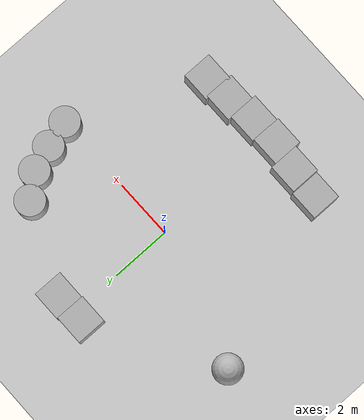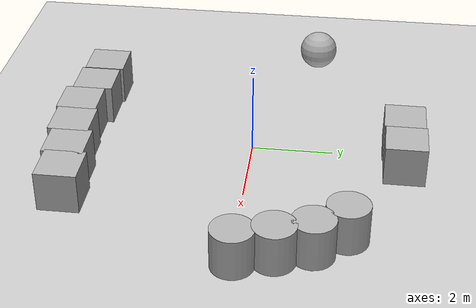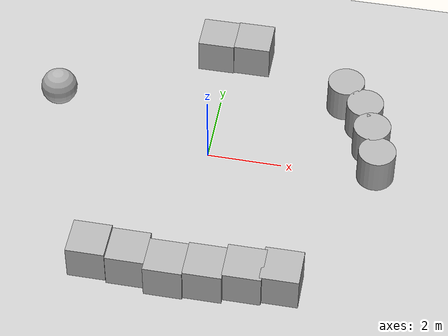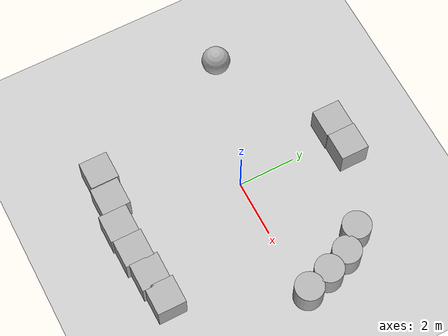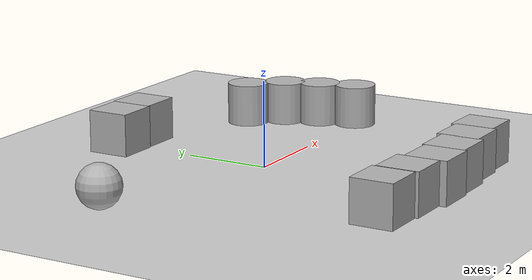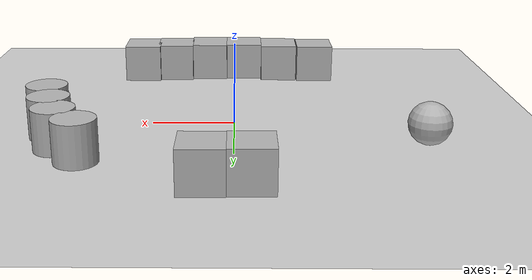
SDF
<sdf version='1.10'>
  <world name='empty'>
    <physics name='1ms' type='ignored'>
      <max_step_size>0.001</max_step_size>
      <real_time_factor>1</real_time_factor>
      <real_time_update_rate>1000</real_time_update_rate>
    </physics>
    <plugin name='gz::sim::systems::Physics' filename='gz-sim-physics-system'/>
    <plugin name='gz::sim::systems::UserCommands' filename='gz-sim-user-commands-system'/>
    <plugin name='gz::sim::systems::SceneBroadcaster' filename='gz-sim-scene-broadcaster-system'/>
    <plugin name='gz::sim::systems::Contact' filename='gz-sim-contact-system'/>
    <plugin filename="gz-sim-imu-system" name="gz::sim::systems::Imu"/>
    <gravity>0 0 -9.8000000000000007</gravity>
    <magnetic_field>5.5644999999999998e-06 2.2875799999999999e-05 -4.2388400000000002e-05</magnetic_field>
    <atmosphere type='adiabatic'/>
    <scene>
      <ambient>0.400000006 0.400000006 0.400000006 1</ambient>
      <background>0.699999988 0.699999988 0.699999988 1</background>
      <shadows>true</shadows>
    </scene>
    <model name='ground_plane'>
      <static>true</static>
      <link name='link'>
        <collision name='collision'>
          <geometry>
            <plane>
              <normal>0 0 1</normal>
              <size>100 100</size>
            </plane>
          </geometry>
          <surface>
            <friction>
              <ode/>
            </friction>
            <bounce/>
            <contact/>
          </surface>
        </collision>
        <visual name='visual'>
          <geometry>
            <plane>
              <normal>0 0 1</normal>
              <size>100 100</size>
            </plane>
          </geometry>
          <material>
            <ambient>0.800000012 0.800000012 0.800000012 1</ambient>
            <diffuse>0.800000012 0.800000012 0.800000012 1</diffuse>
            <specular>0.800000012 0.800000012 0.800000012 1</specular>
          </material>
        </visual>
        <pose>0 0 0 0 0 0</pose>
        <inertial>
          <pose>0 0 0 0 0 0</pose>
          <mass>1</mass>
          <inertia>
            <ixx>1</ixx>
            <ixy>0</ixy>
            <ixz>0</ixz>
            <iyy>1</iyy>
            <iyz>0</iyz>
            <izz>1</izz>
          </inertia>
        </inertial>
        <enable_wind>false</enable_wind>
      </link>
      <pose>0 0 0 0 0 0</pose>
      <self_collide>false</self_collide>
    </model>
    <model name='cylinder'>
      <pose>4.5254944354205895 0.082557884696148637 0.50000022095567642 4.9238945716377225e-07 1.9154482970250189e-07 -0.00046126272734830901</pose>
      <link name='cylinder_link'>
        <inertial>
          <inertia>
            <ixx>0.14580000000000001</ixx>
            <ixy>0</ixy>
            <ixz>0</ixz>
            <iyy>0.14580000000000001</iyy>
            <iyz>0</iyz>
            <izz>0.125</izz>
          </inertia>
          <mass>1</mass>
          <pose>0 0 0 0 0 0</pose>
        </inertial>
        <collision name='cylinder_collision'>
          <geometry>
            <cylinder>
              <radius>0.5</radius>
              <length>1</length>
            </cylinder>
          </geometry>
          <surface>
            <friction>
              <ode/>
            </friction>
            <bounce/>
            <contact/>
          </surface>
        </collision>
        <visual name='cylinder_visual'>
          <geometry>
            <cylinder>
              <radius>0.5</radius>
              <length>1</length>
            </cylinder>
          </geometry>
          <material>
            <ambient>0.300000012 0.300000012 0.300000012 1</ambient>
            <diffuse>0.699999988 0.699999988 0.699999988 1</diffuse>
            <specular>1 1 1 1</specular>
          </material>
        </visual>
        <pose>0 0 0 0 0 0</pose>
        <enable_wind>false</enable_wind>
      </link>
      <static>false</static>
      <self_collide>false</self_collide>
    </model>
    <model name='cylinder_0'>
      <pose>4.2877141300290083 0.9494468562381293 0.50000065344982347 -1.2901403114245178e-06 -5.1207281290646585e-07 -0.00036580791562883355</pose>
      <link name='cylinder_link'>
        <inertial>
          <inertia>
            <ixx>0.14580000000000001</ixx>
            <ixy>0</ixy>
            <ixz>0</ixz>
            <iyy>0.14580000000000001</iyy>
            <iyz>0</iyz>
            <izz>0.125</izz>
          </inertia>
          <mass>1</mass>
          <pose>0 0 0 0 0 0</pose>
        </inertial>
        <collision name='cylinder_collision'>
          <geometry>
            <cylinder>
              <radius>0.5</radius>
              <length>1</length>
            </cylinder>
          </geometry>
          <surface>
            <friction>
              <ode/>
            </friction>
            <bounce/>
            <contact/>
          </surface>
        </collision>
        <visual name='cylinder_visual'>
          <geometry>
            <cylinder>
              <radius>0.5</radius>
              <length>1</length>
            </cylinder>
          </geometry>
          <material>
            <ambient>0.300000012 0.300000012 0.300000012 1</ambient>
            <diffuse>0.699999988 0.699999988 0.699999988 1</diffuse>
            <specular>1 1 1 1</specular>
          </material>
        </visual>
        <pose>0 0 0 0 0 0</pose>
        <enable_wind>false</enable_wind>
      </link>
      <static>false</static>
      <self_collide>false</self_collide>
    </model>
    <model name='cylinder_1'>
      <pose>3.9989819976086576 1.7683630806000854 0.49999882458489819 -3.42447976061655e-06 2.2762849081620865e-06 0.00053944272605636369</pose>
      <link name='cylinder_link'>
        <inertial>
          <inertia>
            <ixx>0.14580000000000001</ixx>
            <ixy>0</ixy>
            <ixz>0</ixz>
            <iyy>0.14580000000000001</iyy>
            <iyz>0</iyz>
            <izz>0.125</izz>
          </inertia>
          <mass>1</mass>
          <pose>0 0 0 0 0 0</pose>
        </inertial>
        <collision name='cylinder_collision'>
          <geometry>
            <cylinder>
              <radius>0.5</radius>
              <length>1</length>
            </cylinder>
          </geometry>
          <surface>
            <friction>
              <ode/>
            </friction>
            <bounce/>
            <contact/>
          </surface>
        </collision>
        <visual name='cylinder_visual'>
          <geometry>
            <cylinder>
              <radius>0.5</radius>
              <length>1</length>
            </cylinder>
          </geometry>
          <material>
            <ambient>0.300000012 0.300000012 0.300000012 1</ambient>
            <diffuse>0.699999988 0.699999988 0.699999988 1</diffuse>
            <specular>1 1 1 1</specular>
          </material>
        </visual>
        <pose>0 0 0 0 0 0</pose>
        <enable_wind>false</enable_wind>
      </link>
      <static>false</static>
      <self_collide>false</self_collide>
    </model>
    <model name='cylinder_2'>
      <pose>3.3960069879289767 2.4799504361941387 0.4999993224954743 1.7878081476083264e-06 7.1152798474436997e-07 -0.016725418552930561</pose>
      <link name='cylinder_link'>
        <inertial>
          <inertia>
            <ixx>0.14580000000000001</ixx>
            <ixy>0</ixy>
            <ixz>0</ixz>
            <iyy>0.14580000000000001</iyy>
            <iyz>0</iyz>
            <izz>0.125</izz>
          </inertia>
          <mass>1</mass>
          <pose>0 0 0 0 0 0</pose>
        </inertial>
        <collision name='cylinder_collision'>
          <geometry>
            <cylinder>
              <radius>0.5</radius>
              <length>1</length>
            </cylinder>
          </geometry>
          <surface>
            <friction>
              <ode/>
            </friction>
            <bounce/>
            <contact/>
          </surface>
        </collision>
        <visual name='cylinder_visual'>
          <geometry>
            <cylinder>
              <radius>0.5</radius>
              <length>1</length>
            </cylinder>
          </geometry>
          <material>
            <ambient>0.300000012 0.300000012 0.300000012 1</ambient>
            <diffuse>0.699999988 0.699999988 0.699999988 1</diffuse>
            <specular>1 1 1 1</specular>
          </material>
        </visual>
        <pose>0 0 0 0 0 0</pose>
        <enable_wind>false</enable_wind>
      </link>
      <static>false</static>
      <self_collide>false</self_collide>
    </model>
    <model name='box'>
      <pose>0.63344068852243662 3.7385126667596005 0.49999999019951591 -6.850355749596131e-13 1.9595392830656327e-08 5.4999837311105256e-08</pose>
      <link name='box_link'>
        <inertial>
          <inertia>
            <ixx>0.16666</ixx>
            <ixy>0</ixy>
            <ixz>0</ixz>
            <iyy>0.16666</iyy>
            <iyz>0</iyz>
            <izz>0.16666</izz>
          </inertia>
          <mass>1</mass>
          <pose>0 0 0 0 0 0</pose>
        </inertial>
        <collision name='box_collision'>
          <geometry>
            <box>
              <size>1 1 1</size>
            </box>
          </geometry>
          <surface>
            <friction>
              <ode/>
            </friction>
            <bounce/>
            <contact/>
          </surface>
        </collision>
        <visual name='box_visual'>
          <geometry>
            <box>
              <size>1 1 1</size>
            </box>
          </geometry>
          <material>
            <ambient>0.300000012 0.300000012 0.300000012 1</ambient>
            <diffuse>0.699999988 0.699999988 0.699999988 1</diffuse>
            <specular>1 1 1 1</specular>
          </material>
        </visual>
        <pose>0 0 0 0 0 0</pose>
        <enable_wind>false</enable_wind>
      </link>
      <static>false</static>
      <self_collide>false</self_collide>
    </model>
    <model name='box_0'>
      <pose>-0.36311689970519379 3.7088246288760387 0.49999999020009922 1.2435430644399463e-12 -1.9599867658640919e-08 -3.8855494782116813e-07</pose>
      <link name='box_link'>
        <inertial>
          <inertia>
            <ixx>0.16666</ixx>
            <ixy>0</ixy>
            <ixz>0</ixz>
            <iyy>0.16666</iyy>
            <iyz>0</iyz>
            <izz>0.16666</izz>
          </inertia>
          <mass>1</mass>
          <pose>0 0 0 0 0 0</pose>
        </inertial>
        <collision name='box_collision'>
          <geometry>
            <box>
              <size>1 1 1</size>
            </box>
          </geometry>
          <surface>
            <friction>
              <ode/>
            </friction>
            <bounce/>
            <contact/>
          </surface>
        </collision>
        <visual name='box_visual'>
          <geometry>
            <box>
              <size>1 1 1</size>
            </box>
          </geometry>
          <material>
            <ambient>0.300000012 0.300000012 0.300000012 1</ambient>
            <diffuse>0.699999988 0.699999988 0.699999988 1</diffuse>
            <specular>1 1 1 1</specular>
          </material>
        </visual>
        <pose>0 0 0 0 0 0</pose>
        <enable_wind>false</enable_wind>
      </link>
      <static>false</static>
      <self_collide>false</self_collide>
    </model>
    <model name='box_1'>
      <pose>0.75020177306543023 -4.3279345649940382 0.49999999020068853 2.4469014891701585e-12 -1.9595674936833843e-08 1.0564899183364902e-06</pose>
      <link name='box_link'>
        <inertial>
          <inertia>
            <ixx>0.16666</ixx>
            <ixy>0</ixy>
            <ixz>0</ixz>
            <iyy>0.16666</iyy>
            <iyz>0</iyz>
            <izz>0.16666</izz>
          </inertia>
          <mass>1</mass>
          <pose>0 0 0 0 0 0</pose>
        </inertial>
        <collision name='box_collision'>
          <geometry>
            <box>
              <size>1 1 1</size>
            </box>
          </geometry>
          <surface>
            <friction>
              <ode/>
            </friction>
            <bounce/>
            <contact/>
          </surface>
        </collision>
        <visual name='box_visual'>
          <geometry>
            <box>
              <size>1 1 1</size>
            </box>
          </geometry>
          <material>
            <ambient>0.300000012 0.300000012 0.300000012 1</ambient>
            <diffuse>0.699999988 0.699999988 0.699999988 1</diffuse>
            <specular>1 1 1 1</specular>
          </material>
        </visual>
        <pose>0 0 0 0 0 0</pose>
        <enable_wind>false</enable_wind>
      </link>
      <static>false</static>
      <self_collide>false</self_collide>
    </model>
    <model name='box_2'>
      <pose>-0.24179034950948627 -4.3803837657332698 0.4999999911428526 -3.4507949436658167e-11 -1.7586924607224787e-08 1.0782409494460931e-07</pose>
      <link name='box_link'>
        <inertial>
          <inertia>
            <ixx>0.16666</ixx>
            <ixy>0</ixy>
            <ixz>0</ixz>
            <iyy>0.16666</iyy>
            <iyz>0</iyz>
            <izz>0.16666</izz>
          </inertia>
          <mass>1</mass>
          <pose>0 0 0 0 0 0</pose>
        </inertial>
        <collision name='box_collision'>
          <geometry>
            <box>
              <size>1 1 1</size>
            </box>
          </geometry>
          <surface>
            <friction>
              <ode/>
            </friction>
            <bounce/>
            <contact/>
          </surface>
        </collision>
        <visual name='box_visual'>
          <geometry>
            <box>
              <size>1 1 1</size>
            </box>
          </geometry>
          <material>
            <ambient>0.300000012 0.300000012 0.300000012 1</ambient>
            <diffuse>0.699999988 0.699999988 0.699999988 1</diffuse>
            <specular>1 1 1 1</specular>
          </material>
        </visual>
        <pose>0 0 0 0 0 0</pose>
        <enable_wind>false</enable_wind>
      </link>
      <static>false</static>
      <self_collide>false</self_collide>
    </model>
    <model name='box_3'>
      <pose>-1.2417953064225771 -4.2140826696055216 0.49999998987720895 4.4541017710831521e-11 -1.4273699518235911e-08 1.9337854347793271e-08</pose>
      <link name='box_link'>
        <inertial>
          <inertia>
            <ixx>0.16666</ixx>
            <ixy>0</ixy>
            <ixz>0</ixz>
            <iyy>0.16666</iyy>
            <iyz>0</iyz>
            <izz>0.16666</izz>
          </inertia>
          <mass>1</mass>
          <pose>0 0 0 0 0 0</pose>
        </inertial>
        <collision name='box_collision'>
          <geometry>
            <box>
              <size>1 1 1</size>
            </box>
          </geometry>
          <surface>
            <friction>
              <ode/>
            </friction>
            <bounce/>
            <contact/>
          </surface>
        </collision>
        <visual name='box_visual'>
          <geometry>
            <box>
              <size>1 1 1</size>
            </box>
          </geometry>
          <material>
            <ambient>0.300000012 0.300000012 0.300000012 1</ambient>
            <diffuse>0.699999988 0.699999988 0.699999988 1</diffuse>
            <specular>1 1 1 1</specular>
          </material>
        </visual>
        <pose>0 0 0 0 0 0</pose>
        <enable_wind>false</enable_wind>
      </link>
      <static>false</static>
      <self_collide>false</self_collide>
    </model>
    <model name='box_4'>
      <pose>1.725087183512656 -4.2091113237741293 0.49999999007807999 -7.8404899156433011e-10 2.069812853864791e-08 1.1428197894021433e-06</pose>
      <link name='box_link'>
        <inertial>
          <inertia>
            <ixx>0.16666</ixx>
            <ixy>0</ixy>
            <ixz>0</ixz>
            <iyy>0.16666</iyy>
            <iyz>0</iyz>
            <izz>0.16666</izz>
          </inertia>
          <mass>1</mass>
          <pose>0 0 0 0 0 0</pose>
        </inertial>
        <collision name='box_collision'>
          <geometry>
            <box>
              <size>1 1 1</size>
            </box>
          </geometry>
          <surface>
            <friction>
              <ode/>
            </friction>
            <bounce/>
            <contact/>
          </surface>
        </collision>
        <visual name='box_visual'>
          <geometry>
            <box>
              <size>1 1 1</size>
            </box>
          </geometry>
          <material>
            <ambient>0.300000012 0.300000012 0.300000012 1</ambient>
            <diffuse>0.699999988 0.699999988 0.699999988 1</diffuse>
            <specular>1 1 1 1</specular>
          </material>
        </visual>
        <pose>0 0 0 0 0 0</pose>
        <enable_wind>false</enable_wind>
      </link>
      <static>false</static>
      <self_collide>false</self_collide>
    </model>
    <model name='box_5'>
      <pose>2.6566475469041899 -4.1222404290886887 0.49999999078091473 -7.1235554410029272e-10 1.9083850949512429e-08 6.9383979144416804e-07</pose>
      <link name='box_link'>
        <inertial>
          <inertia>
            <ixx>0.16666</ixx>
            <ixy>0</ixy>
            <ixz>0</ixz>
            <iyy>0.16666</iyy>
            <iyz>0</iyz>
            <izz>0.16666</izz>
          </inertia>
          <mass>1</mass>
          <pose>0 0 0 0 0 0</pose>
        </inertial>
        <collision name='box_collision'>
          <geometry>
            <box>
              <size>1 1 1</size>
            </box>
          </geometry>
          <surface>
            <friction>
              <ode/>
            </friction>
            <bounce/>
            <contact/>
          </surface>
        </collision>
        <visual name='box_visual'>
          <geometry>
            <box>
              <size>1 1 1</size>
            </box>
          </geometry>
          <material>
            <ambient>0.300000012 0.300000012 0.300000012 1</ambient>
            <diffuse>0.699999988 0.699999988 0.699999988 1</diffuse>
            <specular>1 1 1 1</specular>
          </material>
        </visual>
        <pose>0 0 0 0 0 0</pose>
        <enable_wind>false</enable_wind>
      </link>
      <static>false</static>
      <self_collide>false</self_collide>
    </model>
    <model name='box_6'>
      <pose>-2.26680732554679 -4.1457703896164606 0.49999999990199806 6.2287739151293738e-22 9.3279666454713669e-22 -3.6315533669320137e-22</pose>
      <link name='box_link'>
        <inertial>
          <inertia>
            <ixx>0.16666</ixx>
            <ixy>0</ixy>
            <ixz>0</ixz>
            <iyy>0.16666</iyy>
            <iyz>0</iyz>
            <izz>0.16666</izz>
          </inertia>
          <mass>1</mass>
          <pose>0 0 0 0 0 0</pose>
        </inertial>
        <collision name='box_collision'>
          <geometry>
            <box>
              <size>1 1 1</size>
            </box>
          </geometry>
          <surface>
            <friction>
              <ode/>
            </friction>
            <bounce/>
            <contact/>
          </surface>
        </collision>
        <visual name='box_visual'>
          <geometry>
            <box>
              <size>1 1 1</size>
            </box>
          </geometry>
          <material>
            <ambient>0.300000012 0.300000012 0.300000012 1</ambient>
            <diffuse>0.699999988 0.699999988 0.699999988 1</diffuse>
            <specular>1 1 1 1</specular>
          </material>
        </visual>
        <pose>0 0 0 0 0 0</pose>
        <enable_wind>false</enable_wind>
      </link>
      <static>false</static>
      <self_collide>false</self_collide>
    </model>
    <model name='sphere'>
      <pose>-4.4318717539783732 1.3553277289104961 0.499999999902001 0 0 0</pose>
      <link name='sphere_link'>
        <inertial>
          <inertia>
            <ixx>0.10000000000000001</ixx>
            <ixy>0</ixy>
            <ixz>0</ixz>
            <iyy>0.10000000000000001</iyy>
            <iyz>0</iyz>
            <izz>0.10000000000000001</izz>
          </inertia>
          <mass>1</mass>
          <pose>0 0 0 0 0 0</pose>
        </inertial>
        <collision name='sphere_collision'>
          <geometry>
            <sphere>
              <radius>0.5</radius>
            </sphere>
          </geometry>
          <surface>
            <friction>
              <ode/>
            </friction>
            <bounce/>
            <contact/>
          </surface>
        </collision>
        <visual name='sphere_visual'>
          <geometry>
            <sphere>
              <radius>0.5</radius>
            </sphere>
          </geometry>
          <material>
            <ambient>0.300000012 0.300000012 0.300000012 1</ambient>
            <diffuse>0.699999988 0.699999988 0.699999988 1</diffuse>
            <specular>1 1 1 1</specular>
          </material>
        </visual>
        <pose>0 0 0 0 0 0</pose>
        <enable_wind>false</enable_wind>
      </link>
      <static>false</static>
      <self_collide>false</self_collide>
    </model>
    <light name='sun' type='directional'>
      <pose>0 0 10 0 0 0</pose>
      <cast_shadows>true</cast_shadows>
      <intensity>1</intensity>
      <direction>-0.5 0.10000000000000001 -0.90000000000000002</direction>
      <diffuse>0.800000012 0.800000012 0.800000012 1</diffuse>
      <specular>0.200000003 0.200000003 0.200000003 1</specular>
      <attenuation>
        <range>1000</range>
        <linear>0.01</linear>
        <constant>0.90000000000000002</constant>
        <quadratic>0.001</quadratic>
      </attenuation>
      <spot>
        <inner_angle>0</inner_angle>
        <outer_angle>0</outer_angle>
        <falloff>0</falloff>
      </spot>
    </light>
  </world>
</sdf>
